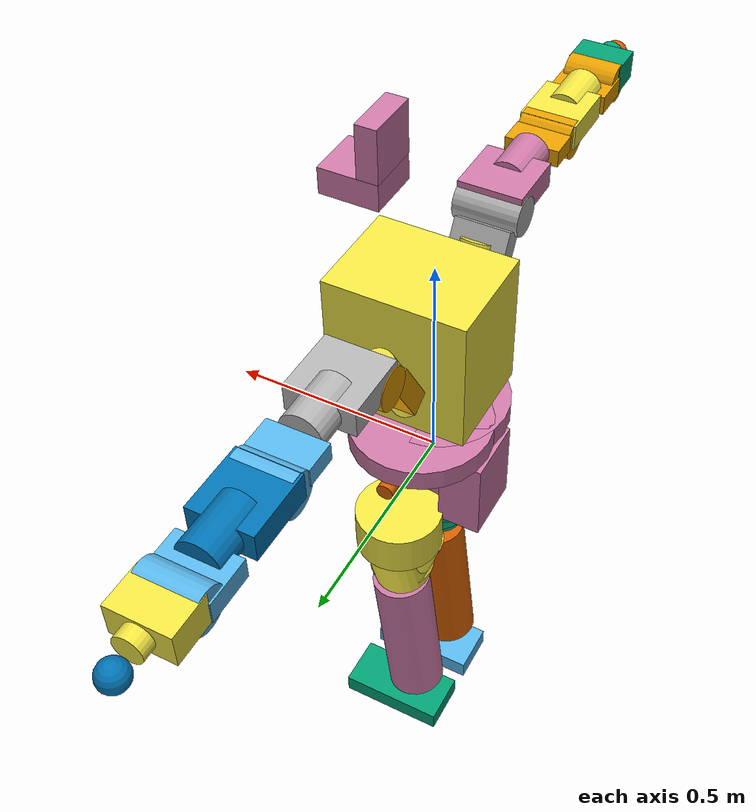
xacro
<robot name="atlas" >
  <include filename="$(find mit_drcsim_scripts)/models/mit_robot_drake/xacro/atlas_skeleton_simple_visuals.urdf" />
  <include filename="$(find mit_drcsim_scripts)/models/mit_robot_drake/xacro/point_mass_hands.urdf" />
  <include filename="$(find mit_drcsim_scripts)/models/mit_robot_drake/xacro/atlas.transmission" />
  <include filename="$(find mit_drcsim_scripts)/models/mit_robot_drake/xacro/multisense_sl_simple_visuals.urdf" />
</robot>

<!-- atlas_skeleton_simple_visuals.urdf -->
<robot name="drc_skeleton">
    <link name="l_clav">
        <inertial>
            <mass value="2.369"/>
            <origin xyz="0.014 0.058 0.029" rpy="0 -0 0"/>
            <inertia ixx="0.004" ixy="0.001" ixz="0" iyy="0.006" iyz="0" izz="0.007"/>
        </inertial>

        <visual group="default">
         <origin rpy="0 1.5707963267949 0" xyz="0 0.0697 0.0261"/>
         <geometry>
            <cylinder radius="0.045" length="0.1525"/>
          </geometry>
      </visual>
      <collision group="default">
         <origin rpy="0 1.5707963267949 0" xyz="0 0.0697 0.0261"/>
         <geometry>
            <cylinder radius="0.045" length="0.1525"/>
          </geometry>
      </collision>
        <visual group="default">
         <origin rpy="1.0472 0 0" xyz="-0.005 -0.0074 -0.0538"/>
         <geometry>
            <box size="0.13 0.15 0.05"/>
          </geometry>
      </visual>
      <collision group="default">
         <origin rpy="1.0472 0 0" xyz="-0.005 -0.0074 -0.0538"/>
         <geometry>
            <box size="0.13 0.15 0.05"/>
          </geometry>
      </collision>
    </link>
    <link name="l_farm">
        <inertial>
            <mass value="0.981"/>
            <origin xyz="0 0.041 0" rpy="0 -0 0"/>
            <inertia ixx="0.003" ixy="0" ixz="0" iyy="0.001" iyz="0" izz="0.003"/>
        </inertial>

        <visual group="default">
         <origin rpy="0 1.5708 0" xyz="0.0 0.065 0.004"/>
         <geometry>
            <cylinder radius="0.045" length="0.125"/>
          </geometry>
      </visual>
      <collision group="default">
         <origin rpy="0 1.5708 0" xyz="0.0 0.065 0.004"/>
         <geometry>
            <cylinder radius="0.045" length="0.125"/>
          </geometry>
      </collision>
        <visual group="default">
         <origin rpy="0 0 0" xyz="0.001 0.015 -0.002"/>
         <geometry>
            <box size="0.135 0.1 0.045"/>
          </geometry>
      </visual>
      <collision group="default">
         <origin rpy="0 0 0" xyz="0.001 0.015 -0.002"/>
         <geometry>
            <box size="0.135 0.1 0.045"/>
          </geometry>
      </collision>
    </link>
    <link name="l_foot">
        <inertial>
            <mass value="0.867"/>
            <origin xyz="0.027 0 -0.067" rpy="0 -0 0"/>
            <inertia ixx="0.002" ixy="0" ixz="0" iyy="0.00350421" iyz="0" izz="0.00400651"/>
        </inertial>

        <!-- bottom -->
        <collision group="heel">
          <origin rpy="0 0 0" xyz="-0.082 0.0624435 -0.081119"/>
          <geometry>
            <sphere radius="0"/>
          </geometry>
        </collision>
        <collision group="heel">
          <origin rpy="0 0 0" xyz="-0.082 -0.0624435 -0.081119"/>
          <geometry>
            <sphere radius="0"/>
          </geometry>
        </collision>
          <collision group="toe">
          <origin rpy="0 0 0" xyz="0.178 0.0624435 -0.081119"/>
          <geometry>
            <sphere radius="0"/>
          </geometry>
        </collision>
        <collision group="toe">
          <origin rpy="0 0 0" xyz="0.178 -0.0624435 -0.081119"/>
          <geometry>
            <sphere radius="0"/>
          </geometry>
        </collision>
        <visual group="default">
         <origin xyz="0.048 0 -0.056119" rpy="0 0 0"/>
         <geometry>
            <box size="0.26 0.124887 0.05"/>
          </geometry>
      </visual>
      <collision group="default">
         <origin xyz="0.048 0 -0.056119" rpy="0 0 0"/>
         <geometry>
            <box size="0.26 0.124887 0.05"/>
          </geometry>
      </collision>
    </link>
    <link name="l_hand">
        <inertial>
            <mass value="2.263"/>
            <origin xyz="0 0.093 0" rpy="0 -0 0"/>
            <inertia ixx="0.01" ixy="0" ixz="0" iyy="0.002" iyz="0" izz="0.01"/>
        </inertial>

        <visual group="default">
         <origin rpy="1.5707963267949 0 0" xyz="0.001 0.1 0.01"/>
         <geometry>
            <cylinder radius="0.03" length="0.05"/>
          </geometry>
      </visual>
      <collision group="default">
         <origin rpy="1.5707963267949 0 0" xyz="0.001 0.1 0.01"/>
         <geometry>
            <cylinder radius="0.03" length="0.05"/>
          </geometry>
      </collision>
        <visual group="default">
         <origin rpy="0 0 0" xyz="0.001 0.05 0.01"/>
         <geometry>
            <box size="0.13 0.09 0.07"/>
          </geometry>
      </visual>
      <collision group="default">
         <origin rpy="0 0 0" xyz="0.001 0.05 0.01"/>
         <geometry>
            <box size="0.13 0.09 0.07"/>
          </geometry>
      </collision>
        <collision>
          <origin rpy="0 0 0" xyz="0.0 0.115 0.0"/>
          <geometry>
            <sphere radius="0"/>
          </geometry>
        </collision>
    </link>
    <link name="l_larm">
        <inertial>
            <mass value="2.148"/>
            <origin xyz="-0.003 0.099 -0.014" rpy="0 -0 0"/>
            <inertia ixx="0.005" ixy="0" ixz="0" iyy="0.003" iyz="0" izz="0.006"/>
        </inertial>

        <collision group="elbow">
          <origin rpy="0 0 0" xyz="0 0 0"/>
          <geometry>
            <sphere radius="0"/>
          </geometry>
        </collision>
        <visual group="default">
         <origin rpy="1.5707963267949 0 0" xyz="0.001 0.127 0.00"/>
         <geometry>
            <cylinder radius="0.045" length="0.125"/>
          </geometry>
      </visual>
      <collision group="default">
         <origin rpy="1.5707963267949 0 0" xyz="0.001 0.127 0.00"/>
         <geometry>
            <cylinder radius="0.045" length="0.125"/>
          </geometry>
      </collision>
        <visual group="default">
         <origin rpy="0 0 0" xyz="0.001 0.051 0.0"/>
         <geometry>
            <box size="0.135 0.15 0.06"/>
          </geometry>
      </visual>
      <collision group="default">
         <origin rpy="0 0 0" xyz="0.001 0.051 0.0"/>
         <geometry>
            <box size="0.135 0.15 0.06"/>
          </geometry>
      </collision>
    </link>
    <link name="l_lglut">
        <inertial>
            <mass value="0.803"/>
            <origin xyz="0.0133341 0.0170484 -0.0312052" rpy="0 -0 0"/>
            <inertia ixx="0.0453457" ixy="-2.24344e-05" ixz="2.50508e-06" iyy="0.0174182"
                  iyz="0.000137862"
                  izz="0.0071591"/>
        </inertial>

        <visual group="default">
         <origin rpy="1.5707963267949 0 0" xyz="0.049968 0.022488 -0.0501165"/>
         <geometry>
            <cylinder radius="0.02009687" length="0.060306"/>
          </geometry>
      </visual>
      <collision group="default">
         <origin rpy="1.5707963267949 0 0" xyz="0.049968 0.022488 -0.0501165"/>
         <geometry>
            <cylinder radius="0.02009687" length="0.060306"/>
          </geometry>
      </collision>
        <visual group="default">
         <origin rpy="0 1.5707963267949 0" xyz="0 0 0"/>
         <geometry>
            <cylinder radius="0.02" length="0.12"/>
          </geometry>
      </visual>
      <collision group="default">
         <origin rpy="0 1.5707963267949 0" xyz="0 0 0"/>
         <geometry>
            <cylinder radius="0.02" length="0.12"/>
          </geometry>
      </collision>
    </link>
    <link name="l_lleg">
        <inertial>
            <mass value="4.367"/>
            <origin xyz="0.001 0 -0.187" rpy="0 -0 0"/>
            <inertia ixx="0.077" ixy="0" ixz="-0.003" iyy="0.076" iyz="0" izz="0.01"/>
        </inertial>

        <visual group="default">
         <origin rpy="0 0.10 0" xyz="0.02 0.00295 -0.18"/>
         <geometry>
            <cylinder radius="0.07" length="0.40"/>
          </geometry>
      </visual>
      <collision group="default">
         <origin rpy="0 0.10 0" xyz="0.02 0.00295 -0.18"/>
         <geometry>
            <cylinder radius="0.07" length="0.40"/>
          </geometry>
      </collision>
        <collision>
          <origin rpy="0 0 0" xyz="0.049 0.0 -0.05"/>
          <geometry>
            <sphere radius="0"/>
          </geometry>
        </collision>
    </link>
    <link name="l_scap">
        <inertial>
            <mass value="2.707"/>
            <origin xyz="-0.002 0.108 0" rpy="0 -0 0"/>
            <inertia ixx="0.01" ixy="0" ixz="0" iyy="0.005" iyz="0" izz="0.013"/>
        </inertial>

        <collision group="shoulder">
            <origin xyz="0.001 0.12651 0.01521" rpy="0 0 0"/>
            <geometry>
              <sphere radius="0"/>
            </geometry>
        </collision>
        <visual group="default">
         <origin rpy="1.5707963267949 0 0" xyz="0.001 0.12651 0.01521"/>
         <geometry>
            <cylinder radius="0.045" length="0.125"/>
          </geometry>
      </visual>
      <collision group="default">
         <origin rpy="1.5707963267949 0 0" xyz="0.001 0.12651 0.01521"/>
         <geometry>
            <cylinder radius="0.045" length="0.125"/>
          </geometry>
      </collision>
        <visual group="default">
         <origin rpy="0 0 0" xyz="0.001 0.05 0.016"/>
         <geometry>
            <box size="0.15 0.15 0.06"/>
          </geometry>
      </visual>
      <collision group="default">
         <origin rpy="0 0 0" xyz="0.001 0.05 0.016"/>
         <geometry>
            <box size="0.15 0.15 0.06"/>
          </geometry>
      </collision>
    </link>
    <link name="l_talus">
        <inertial>
            <mass value="0.867"/>
            <origin xyz="0 0 0" rpy="0 -0 0"/>
            <inertia ixx="0.001" ixy="0" ixz="0" iyy="0.00350421" iyz="0" izz="0.00400651"/>
        </inertial>

        <visual group="default">
         <origin rpy="0 1.5707963267949 0" xyz="0 0 0"/>
         <geometry>
            <cylinder radius="0.010181" length="0.029542"/>
          </geometry>
      </visual>
      <collision group="default">
         <origin rpy="0 1.5707963267949 0" xyz="0 0 0"/>
         <geometry>
            <cylinder radius="0.010181" length="0.029542"/>
          </geometry>
      </collision>
        <visual group="default">
         <origin rpy="1.5707963267949 0 0" xyz="0 0 0"/>
         <geometry>
            <cylinder radius="0.010348" length="0.010059"/>
          </geometry>
      </visual>
      <collision group="default">
         <origin rpy="1.5707963267949 0 0" xyz="0 0 0"/>
         <geometry>
            <cylinder radius="0.010348" length="0.010059"/>
          </geometry>
      </collision>
    </link>
    <link name="l_uarm">
        <inertial>
            <mass value="1.881"/>
            <origin xyz="0.007 0.114 0.008" rpy="0 -0 0"/>
            <inertia ixx="0.002" ixy="0" ixz="0" iyy="0.003" iyz="0" izz="0.003"/>
        </inertial>

        <visual group="default">
         <origin rpy="0 1.5708 0" xyz="0.001 0.111 0.0"/>
         <geometry>
            <cylinder radius="0.045" length="0.125"/>
          </geometry>
      </visual>
      <collision group="default">
         <origin rpy="0 1.5708 0" xyz="0.001 0.111 0.0"/>
         <geometry>
            <cylinder radius="0.045" length="0.125"/>
          </geometry>
      </collision>
        <visual group="default">
         <origin rpy="0 1.5707963267949 0" xyz="0.001 0.043 0.01"/>
         <geometry>
            <box size="0.04 0.07 0.13"/>
          </geometry>
      </visual>
      <collision group="default">
         <origin rpy="0 1.5707963267949 0" xyz="0.001 0.043 0.01"/>
         <geometry>
            <box size="0.04 0.07 0.13"/>
          </geometry>
      </collision>
    </link>
    <link name="l_uglut">
        <inertial>
            <mass value="1.51622"/>
            <origin xyz="0.00529262 -0.00344732 0.00313046" rpy="0 -0 0"/>
            <inertia ixx="0.0327037" ixy="-3.79607e-08" ixz="-2.79549e-05" iyy="0.0174182"
                  iyz="-3.2735e-08"
                  izz="0.0071591"/>
        </inertial>

        <visual group="default">
         <origin rpy="0 1.5707963267949 0" xyz="0 0 0"/>
         <geometry>
            <cylinder radius="0.019096" length="0.078396"/>
          </geometry>
      </visual>
      <collision group="default">
         <origin rpy="0 1.5707963267949 0" xyz="0 0 0"/>
         <geometry>
            <cylinder radius="0.019096" length="0.078396"/>
          </geometry>
      </collision>
        <visual group="default">
         <origin rpy="0 0 0" xyz="0 0 0"/>
         <geometry>
            <cylinder radius="0.019841" length="0.080842"/>
          </geometry>
      </visual>
      <collision group="default">
         <origin rpy="0 0 0" xyz="0 0 0"/>
         <geometry>
            <cylinder radius="0.019841" length="0.080842"/>
          </geometry>
      </collision>
    </link>
    <link name="l_uleg">
        <inertial>
            <mass value="7.227"/>
            <origin xyz="0 0 -0.21" rpy="0 -0 0"/>
            <inertia ixx="0.0453457" ixy="0" ixz="0" iyy="0.09" iyz="0" izz="0.0071591"/>
        </inertial>

        <collision group="hamstring">
          <origin rpy="0 0 0" xyz="-0.1179 0.02085 -0.18"/>
          <geometry>
            <sphere radius="0"/>
          </geometry>
        </collision>
        <collision group="hamstring">
          <origin rpy="0 0 0" xyz="-0.1179 0.02085 -0.08"/>
          <geometry>
            <sphere radius="0"/>
          </geometry>
        </collision>
        <collision group="quad">
          <origin rpy="0 0 0" xyz="0.0821 0.02085 -0.18"/>
          <geometry>
            <sphere radius="0"/>
          </geometry>
        </collision>
        <visual group="default">
         <origin rpy="0 0 0" xyz="-0.0179 0.02085 -0.13"/>
         <geometry>
            <cylinder radius="0.1" length="0.10"/>
          </geometry>
      </visual>
      <collision group="default">
         <origin rpy="0 0 0" xyz="-0.0179 0.02085 -0.13"/>
         <geometry>
            <cylinder radius="0.1" length="0.10"/>
          </geometry>
      </collision>
        <visual group="default">
         <origin rpy="0 -0.3 0" xyz="-0.03 0.01 -0.23"/>
         <geometry>
            <cylinder radius="0.07" length="0.15"/>
          </geometry>
      </visual>
      <collision group="default">
         <origin rpy="0 -0.3 0" xyz="-0.03 0.01 -0.23"/>
         <geometry>
            <cylinder radius="0.07" length="0.15"/>
          </geometry>
      </collision>
        <visual group="default">
         <origin rpy="0 0.3 0" xyz="-0.005 0.01 -0.23"/>
         <geometry>
            <cylinder radius="0.07" length="0.15"/>
          </geometry>
      </visual>
      <collision group="default">
         <origin rpy="0 0.3 0" xyz="-0.005 0.01 -0.23"/>
         <geometry>
            <cylinder radius="0.07" length="0.15"/>
          </geometry>
      </collision>
        <visual group="default">
         <origin rpy="-0.25 0 0" xyz="-0.02 0.03 -0.23"/>
         <geometry>
            <cylinder radius="0.07" length="0.15"/>
          </geometry>
      </visual>
      <collision group="default">
         <origin rpy="-0.25 0 0" xyz="-0.02 0.03 -0.23"/>
         <geometry>
            <cylinder radius="0.07" length="0.15"/>
          </geometry>
      </collision>
    </link>
    <link name="ltorso">
        <inertial>
            <mass value="1.62729"/>
            <origin xyz="-0.0112984 -3.15366e-06 0.0746835" rpy="0 -0 0"/>
            <inertia ixx="0.0646646" ixy="-5.04491e-08" ixz="-0.000342157" iyy="0.050298"
                  iyz="4.87119e-07"
                  izz="0.10973"/>
        </inertial>

    </link>
    <link name="mtorso">
        <inertial>
            <mass value="3.8068"/>
            <origin xyz="-0.00816266 -0.0131245 0.0305974" rpy="0 -0 0"/>
            <inertia ixx="0.1975" ixy="-6.10764e-05" ixz="3.94009e-05" iyy="0.544742"
                  iyz="5.27463e-05"
                  izz="0.10973"/>
        </inertial>

        <visual group="default">
         <origin rpy="1.5707963267949 0 0" xyz="0 0 0"/>
         <geometry>
            <cylinder radius="0.017" length="0.03"/>
          </geometry>
      </visual>
      <collision group="default">
         <origin rpy="1.5707963267949 0 0" xyz="0 0 0"/>
         <geometry>
            <cylinder radius="0.017" length="0.03"/>
          </geometry>
      </collision>
        <visual group="default">
         <origin rpy="0 1.5707963267949 0" xyz="0.0285 0 0.05"/>
         <geometry>
            <cylinder radius="0.015" length="0.02"/>
          </geometry>
      </visual>
      <collision group="default">
         <origin rpy="0 1.5707963267949 0" xyz="0.0285 0 0.05"/>
         <geometry>
            <cylinder radius="0.015" length="0.02"/>
          </geometry>
      </collision>
        <visual group="default">
         <origin rpy="0 1.5707963267949 0" xyz="-0.0285 0 0.05"/>
         <geometry>
            <cylinder radius="0.015" length="0.02"/>
          </geometry>
      </visual>
      <collision group="default">
         <origin rpy="0 1.5707963267949 0" xyz="-0.0285 0 0.05"/>
         <geometry>
            <cylinder radius="0.015" length="0.02"/>
          </geometry>
      </collision>
    </link>
    <link name="pelvis">
        <inertial>
            <mass value="12.54638"/>
            <origin xyz="0.0111 0 0.0271" rpy="0 -0 0"/>
            <inertia ixx="0.0327037" ixy="0.0008" ixz="-0.0007" iyy="0.0174182" iyz="-0.0005"
                  izz="0.118059"/>
        </inertial>

      <collision group="butt">
          <origin rpy="0 0 0" xyz="-0.15 0.075 -0.15"/>
          <geometry>
            <sphere radius="0"/>
          </geometry>
        </collision>
      <collision group="butt">
          <origin rpy="0 0 0" xyz="-0.15 -0.075 -0.15"/>
          <geometry>
            <sphere radius="0"/>
          </geometry>
        </collision>
        <visual group="default">
         <origin rpy="0 0 0" xyz="-0.1 0 -0.05"/>
         <geometry>
            <box size="0.1 0.15 0.2"/>
          </geometry>
      </visual>
      <collision group="default">
         <origin rpy="0 0 0" xyz="-0.1 0 -0.05"/>
         <geometry>
            <box size="0.1 0.15 0.2"/>
          </geometry>
      </collision>
        <visual group="default">
         <origin rpy="1.5707963267949 0 0" xyz="0.046 0.0 -0.02"/>
         <geometry>
            <cylinder radius="0.11" length="0.06"/>
          </geometry>
      </visual>
      <collision group="default">
         <origin rpy="1.5707963267949 0 0" xyz="0.046 0.0 -0.02"/>
         <geometry>
            <cylinder radius="0.11" length="0.06"/>
          </geometry>
      </collision>
        <visual group="default">
         <origin rpy="1.5707963267949 0 0" xyz="-0.03 0.0 -0.02"/>
         <geometry>
            <cylinder radius="0.11" length="0.06"/>
          </geometry>
      </visual>
      <collision group="default">
         <origin rpy="1.5707963267949 0 0" xyz="-0.03 0.0 -0.02"/>
         <geometry>
            <cylinder radius="0.11" length="0.06"/>
          </geometry>
      </collision>
        <visual group="default">
         <origin rpy="0 0 0" xyz="0.01 0.042 0.09"/>
         <geometry>
            <cylinder radius="0.16" length="0.05"/>
          </geometry>
      </visual>
      <collision group="default">
         <origin rpy="0 0 0" xyz="0.01 0.042 0.09"/>
         <geometry>
            <cylinder radius="0.16" length="0.05"/>
          </geometry>
      </collision>
        <visual group="default">
         <origin rpy="0 0 0" xyz="0.01 -0.042 0.09"/>
         <geometry>
            <cylinder radius="0.16" length="0.05"/>
          </geometry>
      </visual>
      <collision group="default">
         <origin rpy="0 0 0" xyz="0.01 -0.042 0.09"/>
         <geometry>
            <cylinder radius="0.16" length="0.05"/>
          </geometry>
      </collision>
        <visual group="default">
         <origin rpy="0 0 0" xyz="-0.1 0 -0.05"/>
         <geometry>
            <box size="0.1 0.15 0.2"/>
          </geometry>
      </visual>
      <collision group="default">
         <origin rpy="0 0 0" xyz="-0.1 0 -0.05"/>
         <geometry>
            <box size="0.1 0.15 0.2"/>
          </geometry>
      </collision>
    </link>
    <link name="r_clav">
        <inertial>
            <mass value="2.369"/>
            <origin xyz="0.014 -0.058 0.029" rpy="0 -0 0"/>
            <inertia ixx="0.004" ixy="-0.001" ixz="0" iyy="0.006" iyz="0" izz="0.007"/>
        </inertial>

        <visual group="default">
         <origin rpy="0 1.5707963267949 0" xyz="0 -0.0697 0.0261"/>
         <geometry>
            <cylinder radius="0.045" length="0.1525"/>
          </geometry>
      </visual>
      <collision group="default">
         <origin rpy="0 1.5707963267949 0" xyz="0 -0.0697 0.0261"/>
         <geometry>
            <cylinder radius="0.045" length="0.1525"/>
          </geometry>
      </collision>
        <visual group="default">
         <origin rpy="-1.0472 0 0" xyz="-0.005 0.0074 -0.0538"/>
         <geometry>
            <box size="0.13 0.15 0.05"/>
          </geometry>
      </visual>
      <collision group="default">
         <origin rpy="-1.0472 0 0" xyz="-0.005 0.0074 -0.0538"/>
         <geometry>
            <box size="0.13 0.15 0.05"/>
          </geometry>
      </collision>
    </link>
    <link name="r_farm">
        <inertial>
            <mass value="0.981"/>
            <origin xyz="0 -0.041 0" rpy="0 -0 0"/>
            <inertia ixx="0.003" ixy="0" ixz="0" iyy="0.001" iyz="0" izz="0.003"/>
        </inertial>

        <visual group="default">
         <origin rpy="0 1.5708 0" xyz="0.0 -0.065 0.004"/>
         <geometry>
            <cylinder radius="0.045" length="0.125"/>
          </geometry>
      </visual>
      <collision group="default">
         <origin rpy="0 1.5708 0" xyz="0.0 -0.065 0.004"/>
         <geometry>
            <cylinder radius="0.045" length="0.125"/>
          </geometry>
      </collision>
        <visual group="default">
         <origin rpy="0 0 0" xyz="0.001 -0.015 -0.002"/>
         <geometry>
            <box size="0.135 0.1 0.045"/>
          </geometry>
      </visual>
      <collision group="default">
         <origin rpy="0 0 0" xyz="0.001 -0.015 -0.002"/>
         <geometry>
            <box size="0.135 0.1 0.045"/>
          </geometry>
      </collision>
    </link>
    <link name="r_foot">
        <inertial>
            <mass value="0.867"/>
            <origin xyz="0.027 0 -0.067" rpy="0 -0 0"/>
            <inertia ixx="0.002" ixy="0" ixz="0" iyy="0.00350421" iyz="0" izz="0.00400651"/>
        </inertial>

        <!-- bottom -->
        <collision group="heel">
          <origin rpy="0 0 0" xyz="-0.082 0.0624435 -0.081119"/>
          <geometry>
            <sphere radius="0"/>
          </geometry>
        </collision>
        <collision group="heel">
          <origin rpy="0 0 0" xyz="-0.082 -0.0624435 -0.081119"/>
          <geometry>
            <sphere radius="0"/>
          </geometry>
        </collision>
          <collision group="toe">
          <origin rpy="0 0 0" xyz="0.178 0.0624435 -0.081119"/>
          <geometry>
            <sphere radius="0"/>
          </geometry>
        </collision>
        <collision group="toe">
          <origin rpy="0 0 0" xyz="0.178 -0.0624435 -0.081119"/>
          <geometry>
            <sphere radius="0"/>
          </geometry>
        </collision>
        <visual group="default">
         <origin xyz="0.048 0 -0.056119" rpy="0 0 0"/>
         <geometry>
            <box size="0.26 0.124887 0.05"/>
          </geometry>
      </visual>
      <collision group="default">
         <origin xyz="0.048 0 -0.056119" rpy="0 0 0"/>
         <geometry>
            <box size="0.26 0.124887 0.05"/>
          </geometry>
      </collision>
    </link>
    <link name="r_hand">
        <inertial>
            <mass value="2.263"/>
            <origin xyz="0 -0.093 0" rpy="0 -0 0"/>
            <inertia ixx="0.01" ixy="0" ixz="0" iyy="0.002" iyz="0" izz="0.01"/>
        </inertial>

        <visual group="default">
         <origin rpy="1.5707963267949 0 0" xyz="0.001 -0.1 0.01"/>
         <geometry>
            <cylinder radius="0.03" length="0.05"/>
          </geometry>
      </visual>
      <collision group="default">
         <origin rpy="1.5707963267949 0 0" xyz="0.001 -0.1 0.01"/>
         <geometry>
            <cylinder radius="0.03" length="0.05"/>
          </geometry>
      </collision>
        <visual group="default">
         <origin rpy="0 0 0" xyz="0.001 -0.05 0.01"/>
         <geometry>
            <box size="0.13 0.09 0.07"/>
          </geometry>
      </visual>
      <collision group="default">
         <origin rpy="0 0 0" xyz="0.001 -0.05 0.01"/>
         <geometry>
            <box size="0.13 0.09 0.07"/>
          </geometry>
      </collision>
        <collision>
          <origin rpy="0 0 0" xyz="0.0 -0.115 0.0"/>
          <geometry>
            <sphere radius="0"/>
          </geometry>
        </collision>
    </link>
    <link name="r_larm">
        <inertial>
            <mass value="2.148"/>
            <origin xyz="-0.003 -0.099 -0.014" rpy="0 -0 0"/>
            <inertia ixx="0.005" ixy="0" ixz="0" iyy="0.003" iyz="0" izz="0.006"/>
          </inertial>

          <collision group="elbow">
            <origin rpy="0 0 0" xyz="0 0 0"/>
            <geometry>
              <sphere radius="0"/>
            </geometry>
          </collision>
          <visual group="default">
            <origin rpy="1.5707963267949 0 0" xyz="0.001 -0.127 0.00"/>
            <geometry>
              <cylinder radius="0.045" length="0.125"/>
            </geometry>
          </visual>
      <collision group="default">
         <origin rpy="1.5707963267949 0 0" xyz="0.001 -0.127 0.00"/>
         <geometry>
              <cylinder radius="0.045" length="0.125"/>
            </geometry>
      </collision>
          <visual group="default">
            <origin rpy="0 0 0" xyz="0.001 -0.051 0.0"/>
            <geometry>
              <box size="0.135 0.15 0.06"/>
            </geometry>
          </visual>
      <collision group="default">
         <origin rpy="0 0 0" xyz="0.001 -0.051 0.0"/>
         <geometry>
              <box size="0.135 0.15 0.06"/>
            </geometry>
      </collision>
        </link>
        <link name="r_lglut">
          <inertial>
            <mass value="0.803"/>
            <origin xyz="0.0133341 -0.0170484 -0.0312052" rpy="0 -0 0"/>
            <inertia ixx="0.0453457" ixy="2.24344e-05" ixz="2.50508e-06" iyy="0.0174182"
                  iyz="-0.000137862"
                  izz="0.0071591"/>
          </inertial>

          <visual group="default">
            <origin rpy="1.5707963267949 0 0" xyz="0.049968 -0.022488 -0.0501165"/>
            <geometry>
              <cylinder radius="0.02009687" length="0.060306"/>
            </geometry>
          </visual>
      <collision group="default">
         <origin rpy="1.5707963267949 0 0" xyz="0.049968 -0.022488 -0.0501165"/>
         <geometry>
              <cylinder radius="0.02009687" length="0.060306"/>
            </geometry>
      </collision>
          <visual group="default">
            <origin rpy="0 1.5707963267949 0" xyz="0 0 0"/>
            <geometry>
              <cylinder radius="0.02" length="0.12"/>
            </geometry>
          </visual>
      <collision group="default">
         <origin rpy="0 1.5707963267949 0" xyz="0 0 0"/>
         <geometry>
              <cylinder radius="0.02" length="0.12"/>
            </geometry>
      </collision>
        </link>
        <link name="r_lleg">
          <inertial>
            <mass value="4.367"/>
            <origin xyz="0.001 0 -0.187" rpy="0 -0 0"/>
            <inertia ixx="0.077" ixy="-0" ixz="-0.003" iyy="0.076" iyz="-0" izz="0.01"/>
          </inertial>

          <visual group="default">
            <origin rpy="0 0.10 0" xyz="0.02 -0.00295 -0.18"/>
            <geometry>
              <cylinder radius="0.07" length="0.40"/>
            </geometry>
          </visual>
      <collision group="default">
         <origin rpy="0 0.10 0" xyz="0.02 -0.00295 -0.18"/>
         <geometry>
              <cylinder radius="0.07" length="0.40"/>
            </geometry>
      </collision>
          <collision>
            <origin rpy="0 0 0" xyz="0.049 0.0 -0.05"/>
            <geometry>
              <sphere radius="0"/>
            </geometry>
          </collision>
        </link>
        <link name="r_scap">
          <inertial>
            <mass value="2.707"/>
            <origin xyz="-0.002 -0.108 0" rpy="0 -0 0"/>
            <inertia ixx="0.01" ixy="0" ixz="0" iyy="0.005" iyz="0" izz="0.013"/>
          </inertial>

          <collision group="shoulder">
            <origin xyz="0.001 -0.12651 0.01521" rpy="0 0 0"/>
            <geometry>
              <sphere radius="0"/>
            </geometry>
          </collision>
          <visual group="default">
            <origin rpy="1.5707963267949 0 0" xyz="0.001 -0.12651 0.01521"/>
            <geometry>
              <cylinder radius="0.045" length="0.125"/>
            </geometry>
          </visual>
      <collision group="default">
         <origin rpy="1.5707963267949 0 0" xyz="0.001 -0.12651 0.01521"/>
         <geometry>
              <cylinder radius="0.045" length="0.125"/>
            </geometry>
      </collision>
          <visual group="default">
            <origin rpy="0 0 0" xyz="0.001 -0.05 0.016"/>
            <geometry>
              <box size="0.15 0.15 0.06"/>
            </geometry>
          </visual>
      <collision group="default">
         <origin rpy="0 0 0" xyz="0.001 -0.05 0.016"/>
         <geometry>
              <box size="0.15 0.15 0.06"/>
            </geometry>
      </collision>
        </link>
        <link name="r_talus">
          <inertial>
            <mass value="0.867"/>
            <origin xyz="0 0 0" rpy="0 -0 0"/>
            <inertia ixx="0.001" ixy="0" ixz="0" iyy="0.00350421" iyz="0" izz="0.00400651"/>
          </inertial>

          <visual group="default">
            <origin rpy="0 1.5707963267949 0" xyz="0 0 0"/>
            <geometry>
              <cylinder radius="0.010181" length="0.029542"/>
            </geometry>
          </visual>
      <collision group="default">
         <origin rpy="0 1.5707963267949 0" xyz="0 0 0"/>
         <geometry>
              <cylinder radius="0.010181" length="0.029542"/>
            </geometry>
      </collision>
          <visual group="default">
            <origin rpy="1.5707963267949 0 0" xyz="0 0 0"/>
            <geometry>
              <cylinder radius="0.010348" length="0.010059"/>
            </geometry>
          </visual>
      <collision group="default">
         <origin rpy="1.5707963267949 0 0" xyz="0 0 0"/>
         <geometry>
              <cylinder radius="0.010348" length="0.010059"/>
            </geometry>
      </collision>
        </link>
        <link name="r_uarm">
          <inertial>
            <mass value="1.881"/>
            <origin xyz="0.007 -0.114 0.008" rpy="0 -0 0"/>
            <inertia ixx="0.002" ixy="0" ixz="0" iyy="0.003" iyz="0" izz="0.003"/>
          </inertial>

          <visual group="default">
            <origin rpy="0 1.5708 0" xyz="0.001 -0.111 0.0"/>
            <geometry>
              <cylinder radius="0.045" length="0.125"/>
            </geometry>
          </visual>
      <collision group="default">
         <origin rpy="0 1.5708 0" xyz="0.001 -0.111 0.0"/>
         <geometry>
              <cylinder radius="0.045" length="0.125"/>
            </geometry>
      </collision>
          <visual group="default">
            <origin rpy="0 1.5707963267949 0" xyz="0.001 -0.043 0.01"/>
            <geometry>
              <box size="0.04 0.07 0.13"/>
            </geometry>
          </visual>
      <collision group="default">
         <origin rpy="0 1.5707963267949 0" xyz="0.001 -0.043 0.01"/>
         <geometry>
              <box size="0.04 0.07 0.13"/>
            </geometry>
      </collision>
        </link>
        <link name="r_uglut">
          <inertial>
            <mass value="1.51622"/>
            <origin xyz="0.00529262 0.00344732 0.00313046" rpy="0 -0 0"/>
            <inertia ixx="0.0327037" ixy="3.79607e-08" ixz="-2.79549e-05" iyy="0.0174182"
                  iyz="3.2735e-08"
                  izz="0.0071591"/>
          </inertial>

          <visual group="default">
            <origin rpy="0 1.5707963267949 0" xyz="0 0 0"/>
            <geometry>
              <cylinder radius="0.019096" length="0.078396"/>
            </geometry>
          </visual>
      <collision group="default">
         <origin rpy="0 1.5707963267949 0" xyz="0 0 0"/>
         <geometry>
              <cylinder radius="0.019096" length="0.078396"/>
            </geometry>
      </collision>
          <visual group="default">
            <origin rpy="0 0 0" xyz="0 0 0"/>
            <geometry>
              <cylinder radius="0.019841" length="0.080842"/>
            </geometry>
          </visual>
      <collision group="default">
         <origin rpy="0 0 0" xyz="0 0 0"/>
         <geometry>
              <cylinder radius="0.019841" length="0.080842"/>
            </geometry>
      </collision>
        </link>
        <link name="r_uleg">
          <inertial>
            <mass value="7.227"/>
            <origin xyz="0 0 -0.21" rpy="0 -0 0"/>
            <inertia ixx="0.0453457" ixy="0" ixz="0" iyy="0.09" iyz="0" izz="0.0071591"/>
          </inertial>

          <collision group="hamstring">
            <origin rpy="0 0 0" xyz="-0.1179 0.02085 -0.18"/>
            <geometry>
              <sphere radius="0"/>
            </geometry>
          </collision>
          <collision group="hamstring">
            <origin rpy="0 0 0" xyz="-0.1179 0.02085 -0.08"/>
            <geometry>
              <sphere radius="0"/>
            </geometry>
          </collision>
          <collision group="quad">
            <origin rpy="0 0 0" xyz="0.0821 0.02085 -0.18"/>
            <geometry>
              <sphere radius="0"/>
            </geometry>
          </collision>
          <visual group="default">
            <origin rpy="0 0 0" xyz="-0.0179 -0.02085 -0.13"/>
            <geometry>
              <cylinder radius="0.1" length="0.10"/>
            </geometry>
          </visual>
      <collision group="default">
         <origin rpy="0 0 0" xyz="-0.0179 -0.02085 -0.13"/>
         <geometry>
              <cylinder radius="0.1" length="0.10"/>
            </geometry>
      </collision>
          <visual group="default">
            <origin rpy="0 -0.3 0" xyz="-0.03 -0.01 -0.23"/>
            <geometry>
              <cylinder radius="0.07" length="0.15"/>
            </geometry>
          </visual>
      <collision group="default">
         <origin rpy="0 -0.3 0" xyz="-0.03 -0.01 -0.23"/>
         <geometry>
              <cylinder radius="0.07" length="0.15"/>
            </geometry>
      </collision>
          <visual group="default">
            <origin rpy="0 0.3 0" xyz="-0.005 -0.01 -0.23"/>
            <geometry>
              <cylinder radius="0.07" length="0.15"/>
            </geometry>
          </visual>
      <collision group="default">
         <origin rpy="0 0.3 0" xyz="-0.005 -0.01 -0.23"/>
         <geometry>
              <cylinder radius="0.07" length="0.15"/>
            </geometry>
      </collision>
          <visual group="default">
            <origin rpy="0.25 0 0" xyz="-0.02 -0.03 -0.23"/>
            <geometry>
              <cylinder radius="0.07" length="0.15"/>
            </geometry>
          </visual>
      <collision group="default">
         <origin rpy="0.25 0 0" xyz="-0.02 -0.03 -0.23"/>
         <geometry>
              <cylinder radius="0.07" length="0.15"/>
            </geometry>
      </collision>
        </link>
        <link name="utorso">
          <inertial>
            <mass value="15.2272"/>
            <origin xyz="0.02 -0.001 0.211" rpy="0 -0 0"/>
            <inertia ixx="0.395" ixy="0" ixz="0.083" iyy="0.544742" iyz="-0.003" izz="0.10973"/>
          </inertial>

          <collision group="sternum">
            <origin rpy="0 0 0" xyz="0.2040 0 0.3471"/>
            <geometry>
              <sphere radius="0"/>
            </geometry>
          </collision>
          <collision group="navel">
            <origin rpy="0 0 0" xyz="-0.1148 0 0.0309"/>
            <geometry>
              <sphere radius="0"/>
            </geometry>
          </collision>
          <visual group="default">
            <origin rpy="0 -0 0" xyz="0.0446 0 0.1869"/>
            <geometry>
              <box size="0.3188 0.24 0.3162"/>
            </geometry>
          </visual>
      <collision group="default">
         <origin rpy="0 -0 0" xyz="0.0446 0 0.1869"/>
         <geometry>
              <box size="0.3188 0.24 0.3162"/>
            </geometry>
      </collision>
          <visual group="default">
            <origin rpy="-0.5236 0 0" xyz="0.024 0.16 0.18"/>
            <geometry>
              <cylinder radius="0.0363" length="0.22375"/>
            </geometry>
          </visual>
      <collision group="default">
         <origin rpy="-0.5236 0 0" xyz="0.024 0.16 0.18"/>
         <geometry>
              <cylinder radius="0.0363" length="0.22375"/>
            </geometry>
      </collision>
          <visual group="default">
            <origin rpy="0.5236 0 0" xyz="0.024 -0.16 0.18"/>
            <geometry>
              <cylinder radius="0.0363" length="0.22375"/>
            </geometry>
          </visual>
      <collision group="default">
         <origin rpy="0.5236 0 0" xyz="0.024 -0.16 0.18"/>
         <geometry>
              <cylinder radius="0.0363" length="0.22375"/>
            </geometry>
      </collision>
        </link>
    <joint name="back_lbz" type="revolute">
        <origin xyz="-0.0125 0 0" rpy="0 -0 0"/>
        <axis xyz="0 0 1"/>
        <parent link="pelvis"/>
        <child link="ltorso"/>
        <dynamics damping="10" friction="0"/>
        <limit effort="124.016" velocity="12" lower="-0.610865" upper="0.610865"/>
        <safety_controller k_position="100" k_velocity="100" soft_lower_limit="-10.6109"
                         soft_upper_limit="10.6109"/>
    </joint>
    <joint name="back_mby" type="revolute">
        <origin xyz="0 0 0.09" rpy="0 -0 0"/>
        <axis xyz="0 1 0"/>
        <parent link="ltorso"/>
        <child link="mtorso"/>
        <dynamics damping="10" friction="0"/>
        <limit effort="206.843" velocity="12" lower="-1.2" upper="1.28"/>
        <safety_controller k_position="100" k_velocity="100" soft_lower_limit="-11.2"
                         soft_upper_limit="11.28"/>
    </joint>
    <joint name="back_ubx" type="revolute">
        <origin xyz="0 0 0.05" rpy="0 -0 0"/>
        <axis xyz="1 0 0"/>
        <parent link="mtorso"/>
        <child link="utorso"/>
        <dynamics damping="10" friction="0"/>
        <limit effort="94.91" velocity="12" lower="-0.790809" upper="0.790809"/>
        <safety_controller k_position="100" k_velocity="100" soft_lower_limit="-10.7908"
                         soft_upper_limit="10.7908"/>
    </joint>
    <joint name="l_arm_elx" type="revolute">
        <origin xyz="0 0.121 0.013" rpy="0 -0 0"/>
        <axis xyz="1 0 0"/>
        <parent link="l_uarm"/>
        <child link="l_larm"/>
        <dynamics damping="1.0" friction="0"/>
        <limit effort="114" velocity="12" lower="0" upper="2.35619"/>
        <safety_controller k_position="100" k_velocity="100" soft_lower_limit="-10"
                         soft_upper_limit="12.3562"/>
    </joint>
    <joint name="l_arm_ely" type="revolute">
        <origin xyz="0 0.185 0" rpy="0 -0 0"/>
        <axis xyz="0 1 0"/>
        <parent link="l_scap"/>
        <child link="l_uarm"/>
        <dynamics damping="1.0" friction="0"/>
        <limit effort="114" velocity="12" lower="0" upper="3.14159"/>
        <safety_controller k_position="100" k_velocity="100" soft_lower_limit="-10"
                         soft_upper_limit="13.1416"/>
    </joint>
    <joint name="l_arm_mwx" type="revolute">
        <origin xyz="0 0.058 0" rpy="0 -0 0"/>
        <axis xyz="1 0 0"/>
        <parent link="l_farm"/>
        <child link="l_hand"/>
        <dynamics damping="1.0" friction="0"/>
        <limit effort="60" velocity="12" lower="-0.436" upper="1.571"/>
        <safety_controller k_position="100" k_velocity="100" soft_lower_limit="-10.436"
                         soft_upper_limit="11.571"/>
    </joint>
    <joint name="l_arm_shx" type="revolute">
        <origin xyz="0 0.075 0.036" rpy="0 -0 0"/>
        <axis xyz="1 0 0"/>
        <parent link="l_clav"/>
        <child link="l_scap"/>
        <dynamics damping="1.0" friction="0"/>
        <limit effort="170" velocity="12" lower="-1.39626" upper="1.74533"/>
        <safety_controller k_position="100" k_velocity="100" soft_lower_limit="-11.3963"
                         soft_upper_limit="11.7453"/>
    </joint>
    <joint name="l_arm_usy" type="revolute">
        <origin xyz="0.024 0.221 0.289" rpy="0 -0 0"/>
        <axis xyz="0 0.5 0.866025"/>
        <parent link="utorso"/>
        <child link="l_clav"/>
        <dynamics damping="1.0" friction="0"/>
        <limit effort="212" velocity="12" lower="-1.9635" upper="1.9635"/>
        <safety_controller k_position="100" k_velocity="100" soft_lower_limit="-11.9635"
                         soft_upper_limit="11.9635"/>
    </joint>
    <joint name="l_arm_uwy" type="revolute">
        <origin xyz="0 0.188 -0.013" rpy="0 -0 0"/>
        <axis xyz="0 1 0"/>
        <parent link="l_larm"/>
        <child link="l_farm"/>
        <dynamics damping="1.0" friction="0"/>
        <limit effort="114" velocity="12" lower="-1.571" upper="1.571"/>
        <safety_controller k_position="100" k_velocity="100" soft_lower_limit="-11.571"
                         soft_upper_limit="11.571"/>
    </joint>
    <joint name="l_leg_kny" type="revolute">
        <origin xyz="-0.05 0 -0.374" rpy="0 -0 0"/>
        <axis xyz="0 1 0"/>
        <parent link="l_uleg"/>
        <child link="l_lleg"/>
        <dynamics damping="1.0" friction="0"/>
        <limit effort="220" velocity="12" lower="0" upper="2.45"/>
        <safety_controller k_position="100" k_velocity="100" soft_lower_limit="-10"
                         soft_upper_limit="12.45"/>
    </joint>
    <joint name="l_leg_lax" type="revolute">
        <origin xyz="0 0 0" rpy="0 -0 0"/>
        <axis xyz="1 0 0"/>
        <parent link="l_talus"/>
        <child link="l_foot"/>
        <dynamics damping="1.0" friction="0"/>
        <limit effort="90" velocity="12" lower="-0.436" upper="0.436"/>
        <safety_controller k_position="100" k_velocity="100" soft_lower_limit="-10.436"
                         soft_upper_limit="10.436"/>
    </joint>
    <joint name="l_leg_lhy" type="revolute">
        <origin xyz="0.05 0 -0.05" rpy="0 -0 0"/>
        <axis xyz="0 1 0"/>
        <parent link="l_lglut"/>
        <child link="l_uleg"/>
        <dynamics damping="1.0" friction="0"/>
        <limit effort="260" velocity="12" lower="-1.75" upper="0.524"/>
        <safety_controller k_position="100" k_velocity="100" soft_lower_limit="-11.75"
                         soft_upper_limit="10.524"/>
    </joint>
    <joint name="l_leg_mhx" type="revolute">
        <origin xyz="0 0 0" rpy="0 -0 0"/>
        <axis xyz="1 0 0"/>
        <parent link="l_uglut"/>
        <child link="l_lglut"/>
        <dynamics damping="1.0" friction="0"/>
        <limit effort="180" velocity="12" lower="-0.47" upper="0.495"/>
        <safety_controller k_position="100" k_velocity="100" soft_lower_limit="-10.47"
                         soft_upper_limit="10.495"/>
    </joint>
    <joint name="l_leg_uay" type="revolute">
        <origin xyz="0 0 -0.422" rpy="0 -0 0"/>
        <axis xyz="0 1 0"/>
        <parent link="l_lleg"/>
        <child link="l_talus"/>
        <dynamics damping="1.0" friction="0"/>
        <limit effort="220" velocity="12" lower="-0.698" upper="0.698"/>
        <safety_controller k_position="100" k_velocity="100" soft_lower_limit="-10.698"
                         soft_upper_limit="10.698"/>
    </joint>
    <joint name="l_leg_uhz" type="revolute">
        <origin xyz="0 0.089 0" rpy="0 -0 0"/>
        <axis xyz="0 0 1"/>
        <parent link="pelvis"/>
        <child link="l_uglut"/>
        <dynamics damping="1.0" friction="0"/>
        <limit effort="110" velocity="12" lower="-0.32" upper="1.14"/>
        <safety_controller k_position="100" k_velocity="100" soft_lower_limit="-10.32"
                         soft_upper_limit="11.14"/>
    </joint>
    <joint name="neck_ay" type="revolute">
        <!-- per slides on sensor head kinematics 2013-02-13 -->
        <origin xyz="0.21672 0 0.53796" rpy="0 -0 0"/>
        <axis xyz="0 1 0"/>
        <parent link="utorso"/>
        <child link="head"/>
        <dynamics damping="1.0" friction="0"/>
        <!-- per slides on sensor head kinematics 2012-12-14 -->
        <limit effort="5" lower="-0.610865238" upper="1.13446401" velocity="12"/>
        <safety_controller k_position="100" k_velocity="100" soft_lower_limit="-10.610865238"
                         soft_upper_limit="11.13446401"/>
    </joint>
    <joint name="r_arm_elx" type="revolute">
        <origin xyz="0 -0.121 0.013" rpy="0 -0 0"/>
        <axis xyz="1 0 0"/>
        <parent link="r_uarm"/>
        <child link="r_larm"/>
        <dynamics damping="1.0" friction="0"/>
        <limit effort="114" velocity="12" lower="-2.35619" upper="0"/>
        <safety_controller k_position="100" k_velocity="100" soft_lower_limit="-12.3562"
                         soft_upper_limit="10"/>
    </joint>
    <joint name="r_arm_ely" type="revolute">
        <origin xyz="0 -0.185 0" rpy="0 -0 0"/>
        <axis xyz="0 1 0"/>
        <parent link="r_scap"/>
        <child link="r_uarm"/>
        <dynamics damping="1.0" friction="0"/>
        <limit effort="114" velocity="12" lower="0" upper="3.14159"/>
        <safety_controller k_position="100" k_velocity="100" soft_lower_limit="-10"
                         soft_upper_limit="13.1416"/>
    </joint>
    <joint name="r_arm_mwx" type="revolute">
        <origin xyz="0 -0.058 0" rpy="0 -0 0"/>
        <axis xyz="1 0 0"/>
        <parent link="r_farm"/>
        <child link="r_hand"/>
        <dynamics damping="1.0" friction="0"/>
        <limit effort="60" velocity="12" lower="-1.571" upper="0.436"/>
        <safety_controller k_position="100" k_velocity="100" soft_lower_limit="-11.571"
                         soft_upper_limit="10.436"/>
    </joint>
    <joint name="r_arm_shx" type="revolute">
        <origin xyz="0 -0.075 0.036" rpy="0 -0 0"/>
        <axis xyz="1 0 0"/>
        <parent link="r_clav"/>
        <child link="r_scap"/>
        <dynamics damping="1.0" friction="0"/>
        <limit effort="170" velocity="12" lower="-1.74533" upper="1.39626"/>
        <safety_controller k_position="100" k_velocity="100" soft_lower_limit="-11.7453"
                         soft_upper_limit="11.3963"/>
    </joint>
    <joint name="r_arm_usy" type="revolute">
        <origin xyz="0.024 -0.221 0.289" rpy="0 -0 0"/>
        <axis xyz="0 0.5 -0.866025"/>
        <parent link="utorso"/>
        <child link="r_clav"/>
        <dynamics damping="1.0" friction="0"/>
        <limit effort="212" velocity="12" lower="-1.9635" upper="1.9635"/>
        <safety_controller k_position="100" k_velocity="100" soft_lower_limit="-11.9635"
                         soft_upper_limit="11.9635"/>
    </joint>
    <joint name="r_arm_uwy" type="revolute">
        <origin xyz="0 -0.188 -0.013" rpy="0 -0 0"/>
        <axis xyz="0 1 0"/>
        <parent link="r_larm"/>
        <child link="r_farm"/>
        <dynamics damping="1.0" friction="0"/>
        <limit effort="114" velocity="12" lower="-1.571" upper="1.571"/>
        <safety_controller k_position="100" k_velocity="100" soft_lower_limit="-11.571"
                         soft_upper_limit="11.571"/>
    </joint>
    <joint name="r_leg_kny" type="revolute">
        <origin xyz="-0.05 0 -0.374" rpy="0 -0 0"/>
        <axis xyz="0 1 0"/>
        <parent link="r_uleg"/>
        <child link="r_lleg"/>
        <dynamics damping="1.0" friction="0"/>
        <limit effort="220" velocity="12" lower="0" upper="2.45"/>
        <safety_controller k_position="100" k_velocity="100" soft_lower_limit="-10"
                         soft_upper_limit="12.45"/>
    </joint>
    <joint name="r_leg_lax" type="revolute">
        <origin xyz="0 0 0" rpy="0 -0 0"/>
        <axis xyz="1 0 0"/>
        <parent link="r_talus"/>
        <child link="r_foot"/>
        <dynamics damping="1.0" friction="0"/>
        <limit effort="90" velocity="12" lower="-0.436" upper="0.436"/>
        <safety_controller k_position="100" k_velocity="100" soft_lower_limit="-10.436"
                         soft_upper_limit="10.436"/>
    </joint>
    <joint name="r_leg_lhy" type="revolute">
        <origin xyz="0.05 0 -0.05" rpy="0 -0 0"/>
        <axis xyz="0 1 0"/>
        <parent link="r_lglut"/>
        <child link="r_uleg"/>
        <dynamics damping="1.0" friction="0"/>
        <limit effort="260" velocity="12" lower="-1.745" upper="0.524"/>
        <safety_controller k_position="100" k_velocity="100" soft_lower_limit="-11.745"
                         soft_upper_limit="10.524"/>
    </joint>
    <joint name="r_leg_mhx" type="revolute">
        <origin xyz="0 0 0" rpy="0 -0 0"/>
        <axis xyz="1 0 0"/>
        <parent link="r_uglut"/>
        <child link="r_lglut"/>
        <dynamics damping="1.0" friction="0"/>
        <limit effort="180" velocity="12" lower="-0.495" upper="0.47"/>
        <safety_controller k_position="100" k_velocity="100" soft_lower_limit="-10.495"
                         soft_upper_limit="10.47"/>
    </joint>
    <joint name="r_leg_uay" type="revolute">
        <origin xyz="0 0 -0.422" rpy="0 -0 0"/>
        <axis xyz="0 1 0"/>
        <parent link="r_lleg"/>
        <child link="r_talus"/>
        <dynamics damping="1.0" friction="0"/>
        <limit effort="220" velocity="12" lower="-0.698" upper="0.698"/>
        <safety_controller k_position="100" k_velocity="100" soft_lower_limit="-10.698"
                         soft_upper_limit="10.698"/>
    </joint>
    <joint name="r_leg_uhz" type="revolute">
        <origin xyz="0 -0.089 0" rpy="0 -0 0"/>
        <axis xyz="0 0 1"/>
        <parent link="pelvis"/>
        <child link="r_uglut"/>
        <dynamics damping="1.0" friction="0"/>
        <limit effort="260" velocity="12" lower="-1.14" upper="0.32"/>
        <safety_controller k_position="100" k_velocity="100" soft_lower_limit="-11.14"
                         soft_upper_limit="10.32"/>
    </joint>
</robot>

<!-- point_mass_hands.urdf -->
<robot name="drc_skeleton">
  <link name="l_hand_point_mass">
    <origin rpy="0 0 0" xyz="0 0 0"/>
    <inertial>
 		<mass value="3.131"/> <!--NEW value-->
    <!--OLD value-->
      <origin xyz="0 0 0"/>
      <inertia ixx="0.01" ixy="0" ixz="0" iyy="0.01" iyz="0" izz="0.01"/>
    </inertial>
    <visual>
      <origin rpy="0 0 0" xyz="0 0 0"/>
      <geometry>
        <sphere radius="0.03"/>
      </geometry>
    </visual>
  </link>

  <link name="r_hand_point_mass">
    <origin rpy="0 0 0" xyz="0 0 0"/>
    <inertial>
 		<mass value="3.131"/> <!--NEW value-->
    <!--OLD value-->
      <origin xyz="0 0 0"/>
      <inertia ixx="0.01" ixy="0" ixz="0" iyy="0.01" iyz="0" izz="0.01"/>
    </inertial>
    <visual>
      <origin rpy="0 0 0" xyz="0 0 0"/>
      <geometry>
        <sphere radius="0.03"/>
      </geometry>
    </visual>
  </link>

<!-- COM numbers are made up for now -->
   <joint name="l_hand_joint" type="fixed">
    <parent link="l_hand"/>
    <child link="l_hand_point_mass"/>

    <origin rpy="0 0 0" xyz="0.0037 0.1603 -0.0087"/><!--NEW value-->
   <!--OLD value-->
  </joint>

<!-- COM numbers are made up for now -->
  <joint name="r_hand_joint" type="fixed">
    <parent link="r_hand"/>
    <child link="r_hand_point_mass"/>
	 <origin rpy="0 0 0" xyz="0.0037 -0.1603 -0.0087"/><!--NEW value-->
   <!--OLD value-->
  </joint>

</robot>

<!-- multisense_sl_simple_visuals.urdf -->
<robot name="multisense_sl">
  <link name="head">
    <inertial>
      <origin xyz="-0.075493 3.3383E-05 0.02774" rpy="0 0 0" />
      <mass value="1.477574" />
      <inertia iyy="0.0041178" ixy="-1.5797E-06" iyz="-6.8415E-07" ixx="0.0039688" ixz="-0.00089293" izz="0.0035243" />
    </inertial>
  <visual>
    <origin xyz="-0.0503 0 -0.00195" rpy="0 0 0" />
    <geometry>
      <box size="0.1311 0.12 0.0591"/>
    </geometry>
  </visual>
  <collision>
    <origin xyz="-0.0503 0 -0.00195" rpy="0 0 0" />
    <geometry>
      <box size="0.1311 0.12 0.0591"/>
    </geometry>
  </collision>
  <visual>
    <origin xyz="-0.093 0 0.0868" rpy="0 0 0" />
    <geometry>
      <box size="0.0468 0.12 0.1184"/>
    </geometry>
  </visual>
  <collision>
    <origin xyz="-0.093 0 0.0868" rpy="0 0 0" />
    <geometry>
      <box size="0.0468 0.12 0.1184"/>
    </geometry>
  </collision>
  </link>

  <gazebo>
    <plugin filename="libMultiSenseSLPlugin.so" name="multisense_plugin"/>
  </gazebo>

</robot>
